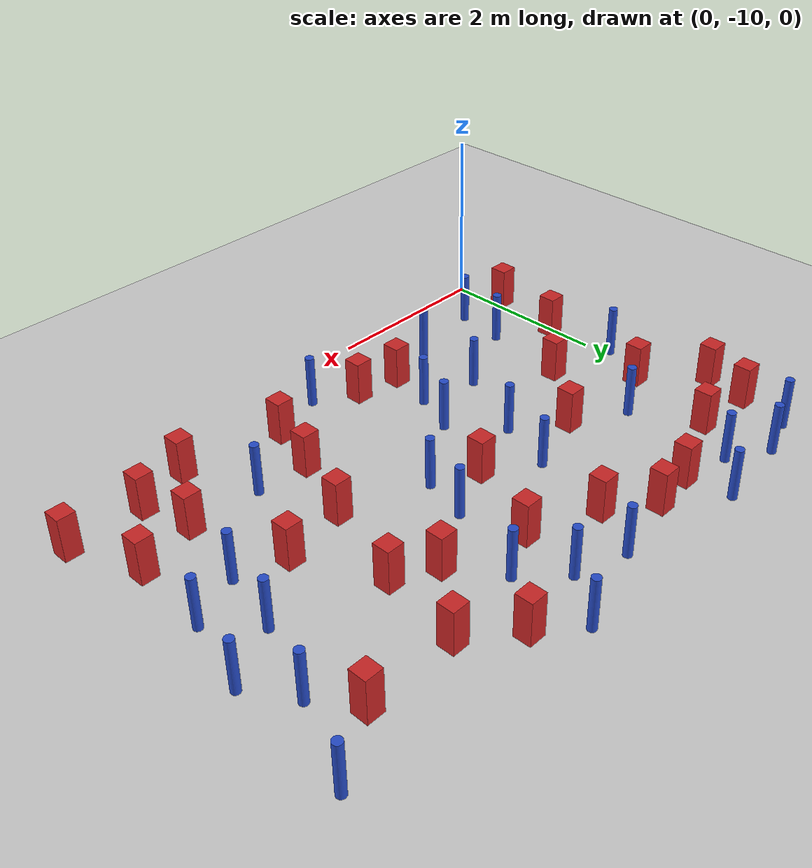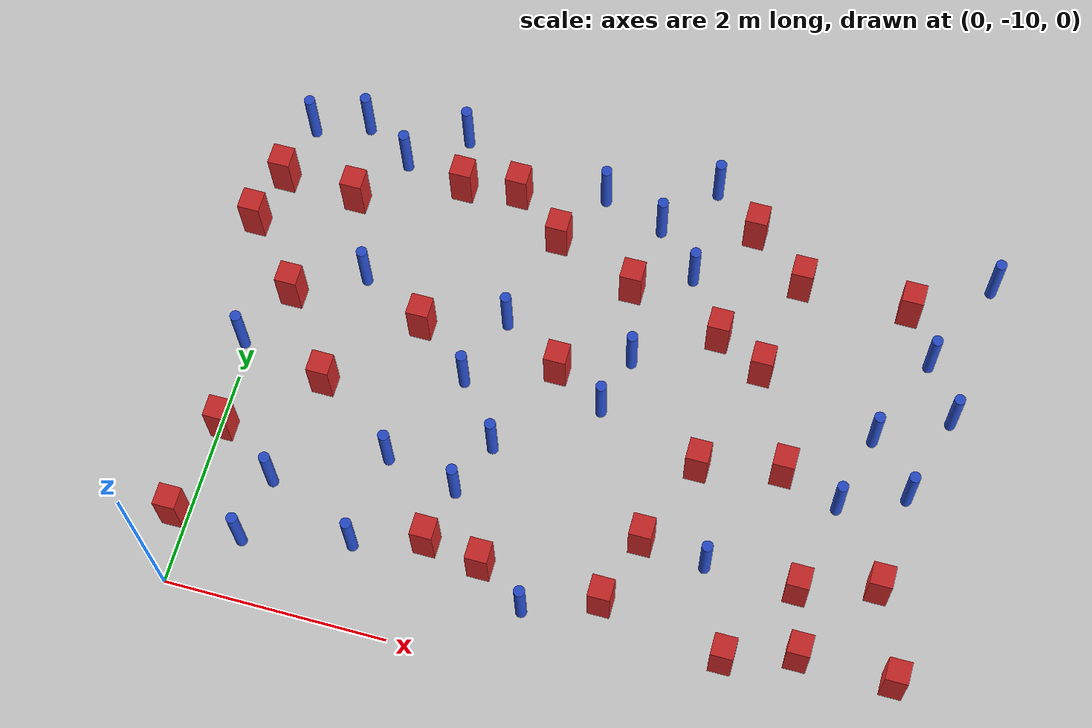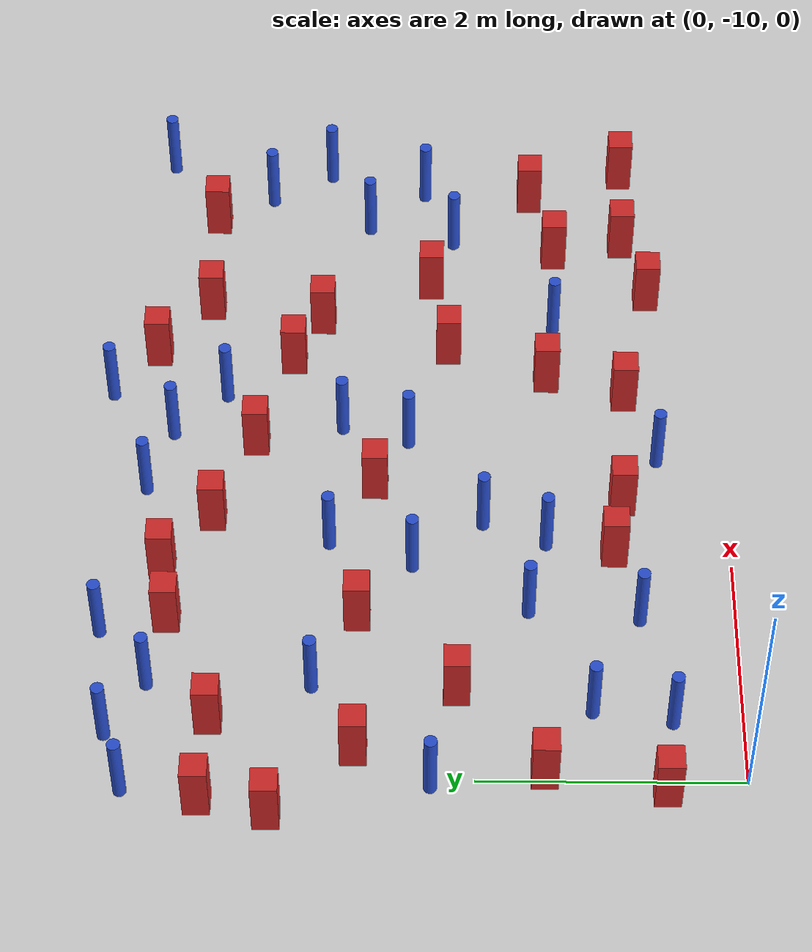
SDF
<sdf version="1.6">
 <world name="default">
  <model name="ground_plane">
   <static>1</static>
   <link name="link">
    <collision name="collision">
     <geometry><plane><normal>0 0 1</normal><size>100 100</size></plane></geometry>
     <surface><friction><ode><mu>100</mu><mu2>50</mu2></ode></friction></surface>
    </collision>
    <visual name="visual">
     <cast_shadows>0</cast_shadows>
     <geometry><plane><normal>0 0 1</normal><size>100 100</size></plane></geometry>
     <material>
      <ambient>1.0 1.0 1.0 1.0</ambient>
      <diffuse>0.8 0.8 0.8 1.0</diffuse>
      <specular>0.01 0.01 0.01 1.000000</specular>
     </material>
    </visual>
   </link>
  </model>
  <model name="square_post_obstacle6">
   <static>true</static>
   <pose>4.19397803059 -7.79593821687 1.91545236811e-07 -7.35059704564e-06 1.12565212e-07 2.39332434364e-05</pose>
   <link name="link">
    <pose>0 0 0.25 0 -0 0</pose>
    <inertial>
     <mass>100</mass>
     <inertia>
      <ixx>0.166667</ixx>
      <ixy>0</ixy>
      <ixz>0</ixz>
      <iyy>0.166667</iyy>
      <iyz>0</iyz>
      <izz>0.166667</izz>
     </inertia>
    </inertial>
    <collision name="collision"><geometry><box><size>.2 .2 .5</size></box></geometry></collision>
    <visual name="visual">
     <geometry><box><size>.2 .2 .5</size></box></geometry>
     <material>
      <script><name>Gazebo/Red</name><uri>file://media/materials/scripts/gazebo.material</uri></script>
     </material>
    </visual>
   </link>
  </model>
  <model name="square_post_obstacle8">
   <static>true</static>
   <pose>6.26625109611 -9.26206873367 1.91545236811e-07 -7.35059704564e-06 1.12565212e-07 2.39332434364e-05</pose>
   <link name="link">
    <pose>0 0 0.25 0 -0 0</pose>
    <inertial>
     <mass>100</mass>
     <inertia>
      <ixx>0.166667</ixx>
      <ixy>0</ixy>
      <ixz>0</ixz>
      <iyy>0.166667</iyy>
      <iyz>0</iyz>
      <izz>0.166667</izz>
     </inertia>
    </inertial>
    <collision name="collision"><geometry><box><size>.2 .2 .5</size></box></geometry></collision>
    <visual name="visual">
     <geometry><box><size>.2 .2 .5</size></box></geometry>
     <material>
      <script><name>Gazebo/Red</name><uri>file://media/materials/scripts/gazebo.material</uri></script>
     </material>
    </visual>
   </link>
  </model>
  <model name="square_post_obstacle13">
   <static>true</static>
   <pose>0.772211470827 -7.86731333248 1.91545236811e-07 -7.35059704564e-06 1.12565212e-07 2.39332434364e-05</pose>
   <link name="link">
    <pose>0 0 0.25 0 -0 0</pose>
    <inertial>
     <mass>100</mass>
     <inertia>
      <ixx>0.166667</ixx>
      <ixy>0</ixy>
      <ixz>0</ixz>
      <iyy>0.166667</iyy>
      <iyz>0</iyz>
      <izz>0.166667</izz>
     </inertia>
    </inertial>
    <collision name="collision"><geometry><box><size>.2 .2 .5</size></box></geometry></collision>
    <visual name="visual">
     <geometry><box><size>.2 .2 .5</size></box></geometry>
     <material>
      <script><name>Gazebo/Red</name><uri>file://media/materials/scripts/gazebo.material</uri></script>
     </material>
    </visual>
   </link>
  </model>
  <model name="pole_obstacle10">
   <static>true</static>
   <pose>2.19114133356 -6.87599460677 7.38925637345e-09 -8.47170692798e-08 1.24976765033e-08 -1.74513093019e-07</pose>
   <link name="link">
    <pose>0 0 0.3 0 -0 0</pose>
    <inertial>
     <mass>1</mass>
     <inertia><ixx>0.145833</ixx><ixy>0</ixy><ixz>0</ixz><iyy>0.145833</iyy><iyz>0</iyz><izz>0.125</izz></inertia>
    </inertial>
    <collision name="collision">
     <geometry><cylinder><radius>0.05</radius><length>.6</length></cylinder></geometry>
    </collision>
    <visual name="visual">
     <geometry><cylinder><radius>0.05</radius><length>.6</length></cylinder></geometry>
     <material>
      <script><name>Gazebo/Blue</name><uri>file://media/materials/scripts/gazebo.material</uri></script>
     </material>
    </visual>
   </link>
  </model>
  <model name="square_post_obstacle22">
   <static>true</static>
   <pose>4.52502306047 -6.75875061664 1.91545236811e-07 -7.35059704564e-06 1.12565212e-07 2.39332434364e-05</pose>
   <link name="link">
    <pose>0 0 0.25 0 -0 0</pose>
    <inertial>
     <mass>100</mass>
     <inertia>
      <ixx>0.166667</ixx>
      <ixy>0</ixy>
      <ixz>0</ixz>
      <iyy>0.166667</iyy>
      <iyz>0</iyz>
      <izz>0.166667</izz>
     </inertia>
    </inertial>
    <collision name="collision"><geometry><box><size>.2 .2 .5</size></box></geometry></collision>
    <visual name="visual">
     <geometry><box><size>.2 .2 .5</size></box></geometry>
     <material>
      <script><name>Gazebo/Red</name><uri>file://media/materials/scripts/gazebo.material</uri></script>
     </material>
    </visual>
   </link>
  </model>
  <model name="square_post_obstacle23">
   <static>true</static>
   <pose>4.93214074501 -7.65087776657 1.91545236811e-07 -7.35059704564e-06 1.12565212e-07 2.39332434364e-05</pose>
   <link name="link">
    <pose>0 0 0.25 0 -0 0</pose>
    <inertial>
     <mass>100</mass>
     <inertia>
      <ixx>0.166667</ixx>
      <ixy>0</ixy>
      <ixz>0</ixz>
      <iyy>0.166667</iyy>
      <iyz>0</iyz>
      <izz>0.166667</izz>
     </inertia>
    </inertial>
    <collision name="collision"><geometry><box><size>.2 .2 .5</size></box></geometry></collision>
    <visual name="visual">
     <geometry><box><size>.2 .2 .5</size></box></geometry>
     <material>
      <script><name>Gazebo/Red</name><uri>file://media/materials/scripts/gazebo.material</uri></script>
     </material>
    </visual>
   </link>
  </model>
  <model name="pole_obstacle20">
   <static>true</static>
   <pose>1.53778844039 -8.41500415461 7.38925637345e-09 -8.47170692798e-08 1.24976764881e-08 -1.74513093027e-07</pose>
   <link name="link">
    <pose>0 0 0.3 0 -0 0</pose>
    <inertial>
     <mass>1</mass>
     <inertia><ixx>0.145833</ixx><ixy>0</ixy><ixz>0</ixz><iyy>0.145833</iyy><iyz>0</iyz><izz>0.125</izz></inertia>
    </inertial>
    <collision name="collision">
     <geometry><cylinder><radius>0.05</radius><length>.6</length></cylinder></geometry>
    </collision>
    <visual name="visual">
     <geometry><cylinder><radius>0.05</radius><length>.6</length></cylinder></geometry>
     <material>
      <script><name>Gazebo/Blue</name><uri>file://media/materials/scripts/gazebo.material</uri></script>
     </material>
    </visual>
   </link>
  </model>
  <model name="square_post_obstacle31">
   <static>true</static>
   <pose>0.0392844817301 -8.51074845727 1.91545236811e-07 -7.35059704564e-06 1.12565212e-07 2.39332434364e-05</pose>
   <link name="link">
    <pose>0 0 0.25 0 -0 0</pose>
    <inertial>
     <mass>100</mass>
     <inertia>
      <ixx>0.166667</ixx>
      <ixy>0</ixy>
      <ixz>0</ixz>
      <iyy>0.166667</iyy>
      <iyz>0</iyz>
      <izz>0.166667</izz>
     </inertia>
    </inertial>
    <collision name="collision"><geometry><box><size>.2 .2 .5</size></box></geometry></collision>
    <visual name="visual">
     <geometry><box><size>.2 .2 .5</size></box></geometry>
     <material>
      <script><name>Gazebo/Red</name><uri>file://media/materials/scripts/gazebo.material</uri></script>
     </material>
    </visual>
   </link>
  </model>
  <model name="pole_obstacle30">
   <static>true</static>
   <pose>2.39608411069 -8.07155105306 7.38925637345e-09 -8.47170692793e-08 1.24976764408e-08 -1.74513093041e-07</pose>
   <link name="link">
    <pose>0 0 0.3 0 -0 0</pose>
    <inertial>
     <mass>1</mass>
     <inertia><ixx>0.145833</ixx><ixy>0</ixy><ixz>0</ixz><iyy>0.145833</iyy><iyz>0</iyz><izz>0.125</izz></inertia>
    </inertial>
    <collision name="collision">
     <geometry><cylinder><radius>0.05</radius><length>.6</length></cylinder></geometry>
    </collision>
    <visual name="visual">
     <geometry><cylinder><radius>0.05</radius><length>.6</length></cylinder></geometry>
     <material>
      <script><name>Gazebo/Blue</name><uri>file://media/materials/scripts/gazebo.material</uri></script>
     </material>
    </visual>
   </link>
  </model>
  <model name="pole_obstacle32">
   <static>true</static>
   <pose>0.377875264153 -5.26143734347 7.38925637345e-09 -8.471706928e-08 1.24976765079e-08 -1.74513093015e-07</pose>
   <link name="link">
    <pose>0 0 0.3 0 -0 0</pose>
    <inertial>
     <mass>1</mass>
     <inertia><ixx>0.145833</ixx><ixy>0</ixy><ixz>0</ixz><iyy>0.145833</iyy><iyz>0</iyz><izz>0.125</izz></inertia>
    </inertial>
    <collision name="collision">
     <geometry><cylinder><radius>0.05</radius><length>.6</length></cylinder></geometry>
    </collision>
    <visual name="visual">
     <geometry><cylinder><radius>0.05</radius><length>.6</length></cylinder></geometry>
     <material>
      <script><name>Gazebo/Blue</name><uri>file://media/materials/scripts/gazebo.material</uri></script>
     </material>
    </visual>
   </link>
  </model>
  <model name="square_post_obstacle39">
   <static>true</static>
   <pose>1.42407613757 -5.65930812135 1.91545236811e-07 -7.35059704564e-06 1.12565212e-07 2.39332434364e-05</pose>
   <link name="link">
    <pose>0 0 0.25 0 -0 0</pose>
    <inertial>
     <mass>100</mass>
     <inertia>
      <ixx>0.166667</ixx>
      <ixy>0</ixy>
      <ixz>0</ixz>
      <iyy>0.166667</iyy>
      <iyz>0</iyz>
      <izz>0.166667</izz>
     </inertia>
    </inertial>
    <collision name="collision"><geometry><box><size>.2 .2 .5</size></box></geometry></collision>
    <visual name="visual">
     <geometry><box><size>.2 .2 .5</size></box></geometry>
     <material>
      <script><name>Gazebo/Red</name><uri>file://media/materials/scripts/gazebo.material</uri></script>
     </material>
    </visual>
   </link>
  </model>
  <model name="square_post_obstacle45">
   <static>true</static>
   <pose>2.75779649857 -7.22167584085 1.91545236811e-07 -7.35059704564e-06 1.12565212e-07 2.39332434364e-05</pose>
   <link name="link">
    <pose>0 0 0.25 0 -0 0</pose>
    <inertial>
     <mass>100</mass>
     <inertia>
      <ixx>0.166667</ixx>
      <ixy>0</ixy>
      <ixz>0</ixz>
      <iyy>0.166667</iyy>
      <iyz>0</iyz>
      <izz>0.166667</izz>
     </inertia>
    </inertial>
    <collision name="collision"><geometry><box><size>.2 .2 .5</size></box></geometry></collision>
    <visual name="visual">
     <geometry><box><size>.2 .2 .5</size></box></geometry>
     <material>
      <script><name>Gazebo/Red</name><uri>file://media/materials/scripts/gazebo.material</uri></script>
     </material>
    </visual>
   </link>
  </model>
  <model name="square_post_obstacle46">
   <static>true</static>
   <pose>-0.10520626963 -9.39823450729 1.91545236811e-07 -7.35059704564e-06 1.12565212e-07 2.39332434364e-05</pose>
   <link name="link">
    <pose>0 0 0.25 0 -0 0</pose>
    <inertial>
     <mass>100</mass>
     <inertia>
      <ixx>0.166667</ixx>
      <ixy>0</ixy>
      <ixz>0</ixz>
      <iyy>0.166667</iyy>
      <iyz>0</iyz>
      <izz>0.166667</izz>
     </inertia>
    </inertial>
    <collision name="collision"><geometry><box><size>.2 .2 .5</size></box></geometry></collision>
    <visual name="visual">
     <geometry><box><size>.2 .2 .5</size></box></geometry>
     <material>
      <script><name>Gazebo/Red</name><uri>file://media/materials/scripts/gazebo.material</uri></script>
     </material>
    </visual>
   </link>
  </model>
  <model name="square_post_obstacle48">
   <static>true</static>
   <pose>0.227653712787 -7.10865654268 1.91545236811e-07 -7.35059704564e-06 1.12565212e-07 2.39332434364e-05</pose>
   <link name="link">
    <pose>0 0 0.25 0 -0 0</pose>
    <inertial>
     <mass>100</mass>
     <inertia>
      <ixx>0.166667</ixx>
      <ixy>0</ixy>
      <ixz>0</ixz>
      <iyy>0.166667</iyy>
      <iyz>0</iyz>
      <izz>0.166667</izz>
     </inertia>
    </inertial>
    <collision name="collision"><geometry><box><size>.2 .2 .5</size></box></geometry></collision>
    <visual name="visual">
     <geometry><box><size>.2 .2 .5</size></box></geometry>
     <material>
      <script><name>Gazebo/Red</name><uri>file://media/materials/scripts/gazebo.material</uri></script>
     </material>
    </visual>
   </link>
  </model>
  <model name="pole_obstacle50">
   <static>true</static>
   <pose>5.63303820513 -7.12730682719 7.38925637345e-09 -8.47170692796e-08 1.24976764786e-08 -1.74513093032e-07</pose>
   <link name="link">
    <pose>0 0 0.3 0 -0 0</pose>
    <inertial>
     <mass>1</mass>
     <inertia><ixx>0.145833</ixx><ixy>0</ixy><ixz>0</ixz><iyy>0.145833</iyy><iyz>0</iyz><izz>0.125</izz></inertia>
    </inertial>
    <collision name="collision">
     <geometry><cylinder><radius>0.05</radius><length>.6</length></cylinder></geometry>
    </collision>
    <visual name="visual">
     <geometry><cylinder><radius>0.05</radius><length>.6</length></cylinder></geometry>
     <material>
      <script><name>Gazebo/Blue</name><uri>file://media/materials/scripts/gazebo.material</uri></script>
     </material>
    </visual>
   </link>
  </model>
  <model name="square_post_obstacle53">
   <static>true</static>
   <pose>-0.33024483394 -6.49326579349 1.91545236811e-07 -7.35059704564e-06 1.12565212e-07 2.39332434364e-05</pose>
   <link name="link">
    <pose>0 0 0.25 0 -0 0</pose>
    <inertial>
     <mass>100</mass>
     <inertia>
      <ixx>0.166667</ixx>
      <ixy>0</ixy>
      <ixz>0</ixz>
      <iyy>0.166667</iyy>
      <iyz>0</iyz>
      <izz>0.166667</izz>
     </inertia>
    </inertial>
    <collision name="collision"><geometry><box><size>.2 .2 .5</size></box></geometry></collision>
    <visual name="visual">
     <geometry><box><size>.2 .2 .5</size></box></geometry>
     <material>
      <script><name>Gazebo/Red</name><uri>file://media/materials/scripts/gazebo.material</uri></script>
     </material>
    </visual>
   </link>
  </model>
  <model name="square_post_obstacle58">
   <static>true</static>
   <pose>4.81874318218 -9.43752990356 1.91545236811e-07 -7.35059704564e-06 1.12565212e-07 2.39332434364e-05</pose>
   <link name="link">
    <pose>0 0 0.25 0 -0 0</pose>
    <inertial>
     <mass>100</mass>
     <inertia>
      <ixx>0.166667</ixx>
      <ixy>0</ixy>
      <ixz>0</ixz>
      <iyy>0.166667</iyy>
      <iyz>0</iyz>
      <izz>0.166667</izz>
     </inertia>
    </inertial>
    <collision name="collision"><geometry><box><size>.2 .2 .5</size></box></geometry></collision>
    <visual name="visual">
     <geometry><box><size>.2 .2 .5</size></box></geometry>
     <material>
      <script><name>Gazebo/Red</name><uri>file://media/materials/scripts/gazebo.material</uri></script>
     </material>
    </visual>
   </link>
  </model>
  <model name="square_post_obstacle59">
   <static>true</static>
   <pose>3.19889941154 -6.26488978832 1.91545236811e-07 -7.35059704564e-06 1.12565212e-07 2.39332434364e-05</pose>
   <link name="link">
    <pose>0 0 0.25 0 -0 0</pose>
    <inertial>
     <mass>100</mass>
     <inertia>
      <ixx>0.166667</ixx>
      <ixy>0</ixy>
      <ixz>0</ixz>
      <iyy>0.166667</iyy>
      <iyz>0</iyz>
      <izz>0.166667</izz>
     </inertia>
    </inertial>
    <collision name="collision"><geometry><box><size>.2 .2 .5</size></box></geometry></collision>
    <visual name="visual">
     <geometry><box><size>.2 .2 .5</size></box></geometry>
     <material>
      <script><name>Gazebo/Red</name><uri>file://media/materials/scripts/gazebo.material</uri></script>
     </material>
    </visual>
   </link>
  </model>
  <model name="pole_obstacle57">
   <static>true</static>
   <pose>1.46952720271 -9.26334321684 7.38925637345e-09 -8.47170692798e-08 1.24976764881e-08 -1.74513093027e-07</pose>
   <link name="link">
    <pose>0 0 0.3 0 -0 0</pose>
    <inertial>
     <mass>1</mass>
     <inertia><ixx>0.145833</ixx><ixy>0</ixy><ixz>0</ixz><iyy>0.145833</iyy><iyz>0</iyz><izz>0.125</izz></inertia>
    </inertial>
    <collision name="collision">
     <geometry><cylinder><radius>0.05</radius><length>.6</length></cylinder></geometry>
    </collision>
    <visual name="visual">
     <geometry><cylinder><radius>0.05</radius><length>.6</length></cylinder></geometry>
     <material>
      <script><name>Gazebo/Blue</name><uri>file://media/materials/scripts/gazebo.material</uri></script>
     </material>
    </visual>
   </link>
  </model>
  <model name="pole_obstacle62">
   <static>true</static>
   <pose>5.4635110812 -7.83443111001 7.38925637345e-09 -8.47170692796e-08 1.24976764786e-08 -1.74513093032e-07</pose>
   <link name="link">
    <pose>0 0 0.3 0 -0 0</pose>
    <inertial>
     <mass>1</mass>
     <inertia><ixx>0.145833</ixx><ixy>0</ixy><ixz>0</ixz><iyy>0.145833</iyy><iyz>0</iyz><izz>0.125</izz></inertia>
    </inertial>
    <collision name="collision">
     <geometry><cylinder><radius>0.05</radius><length>.6</length></cylinder></geometry>
    </collision>
    <visual name="visual">
     <geometry><cylinder><radius>0.05</radius><length>.6</length></cylinder></geometry>
     <material>
      <script><name>Gazebo/Blue</name><uri>file://media/materials/scripts/gazebo.material</uri></script>
     </material>
    </visual>
   </link>
  </model>
  <model name="square_post_obstacle64">
   <static>true</static>
   <pose>-0.21153214395 -5.98622909154 1.91545236811e-07 -7.35059704564e-06 1.12565212e-07 2.39332434364e-05</pose>
   <link name="link">
    <pose>0 0 0.25 0 -0 0</pose>
    <inertial>
     <mass>100</mass>
     <inertia>
      <ixx>0.166667</ixx>
      <ixy>0</ixy>
      <ixz>0</ixz>
      <iyy>0.166667</iyy>
      <iyz>0</iyz>
      <izz>0.166667</izz>
     </inertia>
    </inertial>
    <collision name="collision"><geometry><box><size>.2 .2 .5</size></box></geometry></collision>
    <visual name="visual">
     <geometry><box><size>.2 .2 .5</size></box></geometry>
     <material>
      <script><name>Gazebo/Red</name><uri>file://media/materials/scripts/gazebo.material</uri></script>
     </material>
    </visual>
   </link>
  </model>
  <model name="square_post_obstacle74">
   <static>true</static>
   <pose>4.67828101593 -5.83509719661 1.91545236811e-07 -7.35059704564e-06 1.12565212e-07 2.39332434364e-05</pose>
   <link name="link">
    <pose>0 0 0.25 0 -0 0</pose>
    <inertial>
     <mass>100</mass>
     <inertia>
      <ixx>0.166667</ixx>
      <ixy>0</ixy>
      <ixz>0</ixz>
      <iyy>0.166667</iyy>
      <iyz>0</iyz>
      <izz>0.166667</izz>
     </inertia>
    </inertial>
    <collision name="collision"><geometry><box><size>.2 .2 .5</size></box></geometry></collision>
    <visual name="visual">
     <geometry><box><size>.2 .2 .5</size></box></geometry>
     <material>
      <script><name>Gazebo/Red</name><uri>file://media/materials/scripts/gazebo.material</uri></script>
     </material>
    </visual>
   </link>
  </model>
  <model name="pole_obstacle79">
   <static>true</static>
   <pose>1.97202425343 -7.52304037253 7.38925637345e-09 -8.471706928e-08 1.24976765202e-08 -1.7451309301e-07</pose>
   <link name="link">
    <pose>0 0 0.3 0 -0 0</pose>
    <inertial>
     <mass>1</mass>
     <inertia><ixx>0.145833</ixx><ixy>0</ixy><ixz>0</ixz><iyy>0.145833</iyy><iyz>0</iyz><izz>0.125</izz></inertia>
    </inertial>
    <collision name="collision">
     <geometry><cylinder><radius>0.05</radius><length>.6</length></cylinder></geometry>
    </collision>
    <visual name="visual">
     <geometry><cylinder><radius>0.05</radius><length>.6</length></cylinder></geometry>
     <material>
      <script><name>Gazebo/Blue</name><uri>file://media/materials/scripts/gazebo.material</uri></script>
     </material>
    </visual>
   </link>
  </model>
  <model name="square_post_obstacle79">
   <static>true</static>
   <pose>1.9387877965 -5.59144368387 1.91545236811e-07 -7.35059704564e-06 1.12565212e-07 2.39332434364e-05</pose>
   <link name="link">
    <pose>0 0 0.25 0 -0 0</pose>
    <inertial>
     <mass>100</mass>
     <inertia>
      <ixx>0.166667</ixx>
      <ixy>0</ixy>
      <ixz>0</ixz>
      <iyy>0.166667</iyy>
      <iyz>0</iyz>
      <izz>0.166667</izz>
     </inertia>
    </inertial>
    <collision name="collision"><geometry><box><size>.2 .2 .5</size></box></geometry></collision>
    <visual name="visual">
     <geometry><box><size>.2 .2 .5</size></box></geometry>
     <material>
      <script><name>Gazebo/Red</name><uri>file://media/materials/scripts/gazebo.material</uri></script>
     </material>
    </visual>
   </link>
  </model>
  <model name="pole_obstacle88">
   <static>true</static>
   <pose>2.72678203887 -5.41484933775 7.38925637345e-09 -8.47170692798e-08 1.24976765033e-08 -1.74513093019e-07</pose>
   <link name="link">
    <pose>0 0 0.3 0 -0 0</pose>
    <inertial>
     <mass>1</mass>
     <inertia><ixx>0.145833</ixx><ixy>0</ixy><ixz>0</ixz><iyy>0.145833</iyy><iyz>0</iyz><izz>0.125</izz></inertia>
    </inertial>
    <collision name="collision">
     <geometry><cylinder><radius>0.05</radius><length>.6</length></cylinder></geometry>
    </collision>
    <visual name="visual">
     <geometry><cylinder><radius>0.05</radius><length>.6</length></cylinder></geometry>
     <material>
      <script><name>Gazebo/Blue</name><uri>file://media/materials/scripts/gazebo.material</uri></script>
     </material>
    </visual>
   </link>
  </model>
  <model name="pole_obstacle93">
   <static>true</static>
   <pose>0.612565031665 -8.87817404271 7.38925637345e-09 -8.47170692797e-08 1.249767648e-08 -1.74513093032e-07</pose>
   <link name="link">
    <pose>0 0 0.3 0 -0 0</pose>
    <inertial>
     <mass>1</mass>
     <inertia><ixx>0.145833</ixx><ixy>0</ixy><ixz>0</ixz><iyy>0.145833</iyy><iyz>0</iyz><izz>0.125</izz></inertia>
    </inertial>
    <collision name="collision">
     <geometry><cylinder><radius>0.05</radius><length>.6</length></cylinder></geometry>
    </collision>
    <visual name="visual">
     <geometry><cylinder><radius>0.05</radius><length>.6</length></cylinder></geometry>
     <material>
      <script><name>Gazebo/Blue</name><uri>file://media/materials/scripts/gazebo.material</uri></script>
     </material>
    </visual>
   </link>
  </model>
  <model name="square_post_obstacle86">
   <static>true</static>
   <pose>5.68639350906 -5.83211808647 1.91545236811e-07 -7.35059704564e-06 1.12565212e-07 2.39332434364e-05</pose>
   <link name="link">
    <pose>0 0 0.25 0 -0 0</pose>
    <inertial>
     <mass>100</mass>
     <inertia>
      <ixx>0.166667</ixx>
      <ixy>0</ixy>
      <ixz>0</ixz>
      <iyy>0.166667</iyy>
      <iyz>0</iyz>
      <izz>0.166667</izz>
     </inertia>
    </inertial>
    <collision name="collision"><geometry><box><size>.2 .2 .5</size></box></geometry></collision>
    <visual name="visual">
     <geometry><box><size>.2 .2 .5</size></box></geometry>
     <material>
      <script><name>Gazebo/Red</name><uri>file://media/materials/scripts/gazebo.material</uri></script>
     </material>
    </visual>
   </link>
  </model>
  <model name="pole_obstacle103">
   <static>true</static>
   <pose>6.0398007227 -7.59028607454 7.38925637345e-09 -8.47170692796e-08 1.24976764786e-08 -1.74513093032e-07</pose>
   <link name="link">
    <pose>0 0 0.3 0 -0 0</pose>
    <inertial>
     <mass>1</mass>
     <inertia><ixx>0.145833</ixx><ixy>0</ixy><ixz>0</ixz><iyy>0.145833</iyy><iyz>0</iyz><izz>0.125</izz></inertia>
    </inertial>
    <collision name="collision">
     <geometry><cylinder><radius>0.05</radius><length>.6</length></cylinder></geometry>
    </collision>
    <visual name="visual">
     <geometry><cylinder><radius>0.05</radius><length>.6</length></cylinder></geometry>
     <material>
      <script><name>Gazebo/Blue</name><uri>file://media/materials/scripts/gazebo.material</uri></script>
     </material>
    </visual>
   </link>
  </model>
  <model name="pole_obstacle106">
   <static>true</static>
   <pose>3.231013918 -7.47876884364 7.38925637345e-09 -8.47170692798e-08 1.24976765033e-08 -1.74513093019e-07</pose>
   <link name="link">
    <pose>0 0 0.3 0 -0 0</pose>
    <inertial>
     <mass>1</mass>
     <inertia><ixx>0.145833</ixx><ixy>0</ixy><ixz>0</ixz><iyy>0.145833</iyy><iyz>0</iyz><izz>0.125</izz></inertia>
    </inertial>
    <collision name="collision">
     <geometry><cylinder><radius>0.05</radius><length>.6</length></cylinder></geometry>
    </collision>
    <visual name="visual">
     <geometry><cylinder><radius>0.05</radius><length>.6</length></cylinder></geometry>
     <material>
      <script><name>Gazebo/Blue</name><uri>file://media/materials/scripts/gazebo.material</uri></script>
     </material>
    </visual>
   </link>
  </model>
  <model name="square_post_obstacle105">
   <static>true</static>
   <pose>2.60833822757 -9.16600396907 1.91545236811e-07 -7.35059704564e-06 1.12565212e-07 2.39332434364e-05</pose>
   <link name="link">
    <pose>0 0 0.25 0 -0 0</pose>
    <inertial>
     <mass>100</mass>
     <inertia>
      <ixx>0.166667</ixx>
      <ixy>0</ixy>
      <ixz>0</ixz>
      <iyy>0.166667</iyy>
      <iyz>0</iyz>
      <izz>0.166667</izz>
     </inertia>
    </inertial>
    <collision name="collision"><geometry><box><size>.2 .2 .5</size></box></geometry></collision>
    <visual name="visual">
     <geometry><box><size>.2 .2 .5</size></box></geometry>
     <material>
      <script><name>Gazebo/Red</name><uri>file://media/materials/scripts/gazebo.material</uri></script>
     </material>
    </visual>
   </link>
  </model>
  <model name="square_post_obstacle109">
   <static>true</static>
   <pose>5.42975025469 -9.2468681573 1.91545236811e-07 -7.35059704564e-06 1.12565212e-07 2.39332434364e-05</pose>
   <link name="link">
    <pose>0 0 0.25 0 -0 0</pose>
    <inertial>
     <mass>100</mass>
     <inertia>
      <ixx>0.166667</ixx>
      <ixy>0</ixy>
      <ixz>0</ixz>
      <iyy>0.166667</iyy>
      <iyz>0</iyz>
      <izz>0.166667</izz>
     </inertia>
    </inertial>
    <collision name="collision"><geometry><box><size>.2 .2 .5</size></box></geometry></collision>
    <visual name="visual">
     <geometry><box><size>.2 .2 .5</size></box></geometry>
     <material>
      <script><name>Gazebo/Red</name><uri>file://media/materials/scripts/gazebo.material</uri></script>
     </material>
    </visual>
   </link>
  </model>
  <model name="pole_obstacle125">
   <static>true</static>
   <pose>3.71751121343 -5.07867403316 7.38925637345e-09 -8.47170692798e-08 1.24976765033e-08 -1.74513093019e-07</pose>
   <link name="link">
    <pose>0 0 0.3 0 -0 0</pose>
    <inertial>
     <mass>1</mass>
     <inertia><ixx>0.145833</ixx><ixy>0</ixy><ixz>0</ixz><iyy>0.145833</iyy><iyz>0</iyz><izz>0.125</izz></inertia>
    </inertial>
    <collision name="collision">
     <geometry><cylinder><radius>0.05</radius><length>.6</length></cylinder></geometry>
    </collision>
    <visual name="visual">
     <geometry><cylinder><radius>0.05</radius><length>.6</length></cylinder></geometry>
     <material>
      <script><name>Gazebo/Blue</name><uri>file://media/materials/scripts/gazebo.material</uri></script>
     </material>
    </visual>
   </link>
  </model>
  <model name="pole_obstacle135">
   <static>true</static>
   <pose>0.834663401277 -5.54327725351 7.38925637345e-09 -8.471706928e-08 1.24976765086e-08 -1.74513093015e-07</pose>
   <link name="link">
    <pose>0 0 0.3 0 -0 0</pose>
    <inertial>
     <mass>1</mass>
     <inertia><ixx>0.145833</ixx><ixy>0</ixy><ixz>0</ixz><iyy>0.145833</iyy><iyz>0</iyz><izz>0.125</izz></inertia>
    </inertial>
    <collision name="collision">
     <geometry><cylinder><radius>0.05</radius><length>.6</length></cylinder></geometry>
    </collision>
    <visual name="visual">
     <geometry><cylinder><radius>0.05</radius><length>.6</length></cylinder></geometry>
     <material>
      <script><name>Gazebo/Blue</name><uri>file://media/materials/scripts/gazebo.material</uri></script>
     </material>
    </visual>
   </link>
  </model>
  <model name="pole_obstacle138">
   <static>true</static>
   <pose>1.3204764956 -5.15401270149 7.38925637345e-09 -8.47170692799e-08 1.24976765033e-08 -1.74513093018e-07</pose>
   <link name="link">
    <pose>0 0 0.3 0 -0 0</pose>
    <inertial>
     <mass>1</mass>
     <inertia><ixx>0.145833</ixx><ixy>0</ixy><ixz>0</ixz><iyy>0.145833</iyy><iyz>0</iyz><izz>0.125</izz></inertia>
    </inertial>
    <collision name="collision">
     <geometry><cylinder><radius>0.05</radius><length>.6</length></cylinder></geometry>
    </collision>
    <visual name="visual">
     <geometry><cylinder><radius>0.05</radius><length>.6</length></cylinder></geometry>
     <material>
      <script><name>Gazebo/Blue</name><uri>file://media/materials/scripts/gazebo.material</uri></script>
     </material>
    </visual>
   </link>
  </model>
  <model name="square_post_obstacle121">
   <static>true</static>
   <pose>5.96718829959 -8.48121459847 1.91545236811e-07 -7.35059704564e-06 1.12565212e-07 2.39332434364e-05</pose>
   <link name="link">
    <pose>0 0 0.25 0 -0 0</pose>
    <inertial>
     <mass>100</mass>
     <inertia>
      <ixx>0.166667</ixx>
      <ixy>0</ixy>
      <ixz>0</ixz>
      <iyy>0.166667</iyy>
      <iyz>0</iyz>
      <izz>0.166667</izz>
     </inertia>
    </inertial>
    <collision name="collision"><geometry><box><size>.2 .2 .5</size></box></geometry></collision>
    <visual name="visual">
     <geometry><box><size>.2 .2 .5</size></box></geometry>
     <material>
      <script><name>Gazebo/Red</name><uri>file://media/materials/scripts/gazebo.material</uri></script>
     </material>
    </visual>
   </link>
  </model>
  <model name="square_post_obstacle124">
   <static>true</static>
   <pose>5.29317466504 -8.67597911265 1.91545236811e-07 -7.35059704564e-06 1.12565212e-07 2.39332434364e-05</pose>
   <link name="link">
    <pose>0 0 0.25 0 -0 0</pose>
    <inertial>
     <mass>100</mass>
     <inertia>
      <ixx>0.166667</ixx>
      <ixy>0</ixy>
      <ixz>0</ixz>
      <iyy>0.166667</iyy>
      <iyz>0</iyz>
      <izz>0.166667</izz>
     </inertia>
    </inertial>
    <collision name="collision"><geometry><box><size>.2 .2 .5</size></box></geometry></collision>
    <visual name="visual">
     <geometry><box><size>.2 .2 .5</size></box></geometry>
     <material>
      <script><name>Gazebo/Red</name><uri>file://media/materials/scripts/gazebo.material</uri></script>
     </material>
    </visual>
   </link>
  </model>
  <model name="square_post_obstacle127">
   <static>true</static>
   <pose>0.492449295776 -6.02844202041 1.91545236811e-07 -7.35059704564e-06 1.12565212e-07 2.39332434364e-05</pose>
   <link name="link">
    <pose>0 0 0.25 0 -0 0</pose>
    <inertial>
     <mass>100</mass>
     <inertia>
      <ixx>0.166667</ixx>
      <ixy>0</ixy>
      <ixz>0</ixz>
      <iyy>0.166667</iyy>
      <iyz>0</iyz>
      <izz>0.166667</izz>
     </inertia>
    </inertial>
    <collision name="collision"><geometry><box><size>.2 .2 .5</size></box></geometry></collision>
    <visual name="visual">
     <geometry><box><size>.2 .2 .5</size></box></geometry>
     <material>
      <script><name>Gazebo/Red</name><uri>file://media/materials/scripts/gazebo.material</uri></script>
     </material>
    </visual>
   </link>
  </model>
  <model name="square_post_obstacle138">
   <static>true</static>
   <pose>4.15504456436 -5.42534551516 1.91545236811e-07 -7.35059704564e-06 1.12565212e-07 2.39332434364e-05</pose>
   <link name="link">
    <pose>0 0 0.25 0 -0 0</pose>
    <inertial>
     <mass>100</mass>
     <inertia>
      <ixx>0.166667</ixx>
      <ixy>0</ixy>
      <ixz>0</ixz>
      <iyy>0.166667</iyy>
      <iyz>0</iyz>
      <izz>0.166667</izz>
     </inertia>
    </inertial>
    <collision name="collision"><geometry><box><size>.2 .2 .5</size></box></geometry></collision>
    <visual name="visual">
     <geometry><box><size>.2 .2 .5</size></box></geometry>
     <material>
      <script><name>Gazebo/Red</name><uri>file://media/materials/scripts/gazebo.material</uri></script>
     </material>
    </visual>
   </link>
  </model>
  <model name="square_post_obstacle151">
   <static>true</static>
   <pose>1.45722636195 -7.10904027202 1.91545236811e-07 -7.35059704564e-06 1.12565212e-07 2.39332434364e-05</pose>
   <link name="link">
    <pose>0 0 0.25 0 -0 0</pose>
    <inertial>
     <mass>100</mass>
     <inertia>
      <ixx>0.166667</ixx>
      <ixy>0</ixy>
      <ixz>0</ixz>
      <iyy>0.166667</iyy>
      <iyz>0</iyz>
      <izz>0.166667</izz>
     </inertia>
    </inertial>
    <collision name="collision"><geometry><box><size>.2 .2 .5</size></box></geometry></collision>
    <visual name="visual">
     <geometry><box><size>.2 .2 .5</size></box></geometry>
     <material>
      <script><name>Gazebo/Red</name><uri>file://media/materials/scripts/gazebo.material</uri></script>
     </material>
    </visual>
   </link>
  </model>
  <model name="pole_obstacle163">
   <static>true</static>
   <pose>4.47693285886 -8.65839218837 7.38925637345e-09 -8.471706928e-08 1.24976765081e-08 -1.74513093015e-07</pose>
   <link name="link">
    <pose>0 0 0.3 0 -0 0</pose>
    <inertial>
     <mass>1</mass>
     <inertia><ixx>0.145833</ixx><ixy>0</ixy><ixz>0</ixz><iyy>0.145833</iyy><iyz>0</iyz><izz>0.125</izz></inertia>
    </inertial>
    <collision name="collision">
     <geometry><cylinder><radius>0.05</radius><length>.6</length></cylinder></geometry>
    </collision>
    <visual name="visual">
     <geometry><cylinder><radius>0.05</radius><length>.6</length></cylinder></geometry>
     <material>
      <script><name>Gazebo/Blue</name><uri>file://media/materials/scripts/gazebo.material</uri></script>
     </material>
    </visual>
   </link>
  </model>
  <model name="pole_obstacle167">
   <static>true</static>
   <pose>3.37283130652 -6.95004390382 7.38925637345e-09 -8.47170692798e-08 1.24976765033e-08 -1.74513093019e-07</pose>
   <link name="link">
    <pose>0 0 0.3 0 -0 0</pose>
    <inertial>
     <mass>1</mass>
     <inertia><ixx>0.145833</ixx><ixy>0</ixy><ixz>0</ixz><iyy>0.145833</iyy><iyz>0</iyz><izz>0.125</izz></inertia>
    </inertial>
    <collision name="collision">
     <geometry><cylinder><radius>0.05</radius><length>.6</length></cylinder></geometry>
    </collision>
    <visual name="visual">
     <geometry><cylinder><radius>0.05</radius><length>.6</length></cylinder></geometry>
     <material>
      <script><name>Gazebo/Blue</name><uri>file://media/materials/scripts/gazebo.material</uri></script>
     </material>
    </visual>
   </link>
  </model>
  <model name="pole_obstacle173">
   <static>true</static>
   <pose>3.30367178407 -5.59507461937 7.38925637345e-09 -8.47170692798e-08 1.24976765033e-08 -1.74513093019e-07</pose>
   <link name="link">
    <pose>0 0 0.3 0 -0 0</pose>
    <inertial>
     <mass>1</mass>
     <inertia><ixx>0.145833</ixx><ixy>0</ixy><ixz>0</ixz><iyy>0.145833</iyy><iyz>0</iyz><izz>0.125</izz></inertia>
    </inertial>
    <collision name="collision">
     <geometry><cylinder><radius>0.05</radius><length>.6</length></cylinder></geometry>
    </collision>
    <visual name="visual">
     <geometry><cylinder><radius>0.05</radius><length>.6</length></cylinder></geometry>
     <material>
      <script><name>Gazebo/Blue</name><uri>file://media/materials/scripts/gazebo.material</uri></script>
     </material>
    </visual>
   </link>
  </model>
  <model name="pole_obstacle176">
   <static>true</static>
   <pose>3.05310372641 -9.45560191249 7.38925637345e-09 -8.47170692793e-08 1.24976764408e-08 -1.74513093041e-07</pose>
   <link name="link">
    <pose>0 0 0.3 0 -0 0</pose>
    <inertial>
     <mass>1</mass>
     <inertia><ixx>0.145833</ixx><ixy>0</ixy><ixz>0</ixz><iyy>0.145833</iyy><iyz>0</iyz><izz>0.125</izz></inertia>
    </inertial>
    <collision name="collision">
     <geometry><cylinder><radius>0.05</radius><length>.6</length></cylinder></geometry>
    </collision>
    <visual name="visual">
     <geometry><cylinder><radius>0.05</radius><length>.6</length></cylinder></geometry>
     <material>
      <script><name>Gazebo/Blue</name><uri>file://media/materials/scripts/gazebo.material</uri></script>
     </material>
    </visual>
   </link>
  </model>
  <model name="pole_obstacle177">
   <static>true</static>
   <pose>-0.0598452252925 -7.67581059101 7.38925637345e-09 -8.47170692799e-08 1.24976765086e-08 -1.74513093017e-07</pose>
   <link name="link">
    <pose>0 0 0.3 0 -0 0</pose>
    <inertial>
     <mass>1</mass>
     <inertia><ixx>0.145833</ixx><ixy>0</ixy><ixz>0</ixz><iyy>0.145833</iyy><iyz>0</iyz><izz>0.125</izz></inertia>
    </inertial>
    <collision name="collision">
     <geometry><cylinder><radius>0.05</radius><length>.6</length></cylinder></geometry>
    </collision>
    <visual name="visual">
     <geometry><cylinder><radius>0.05</radius><length>.6</length></cylinder></geometry>
     <material>
      <script><name>Gazebo/Blue</name><uri>file://media/materials/scripts/gazebo.material</uri></script>
     </material>
    </visual>
   </link>
  </model>
  <model name="pole_obstacle191">
   <static>true</static>
   <pose>6.3700127425 -5.4094583683 7.38925637345e-09 -8.47170692796e-08 1.24976764786e-08 -1.74513093032e-07</pose>
   <link name="link">
    <pose>0 0 0.3 0 -0 0</pose>
    <inertial>
     <mass>1</mass>
     <inertia><ixx>0.145833</ixx><ixy>0</ixy><ixz>0</ixz><iyy>0.145833</iyy><iyz>0</iyz><izz>0.125</izz></inertia>
    </inertial>
    <collision name="collision">
     <geometry><cylinder><radius>0.05</radius><length>.6</length></cylinder></geometry>
    </collision>
    <visual name="visual">
     <geometry><cylinder><radius>0.05</radius><length>.6</length></cylinder></geometry>
     <material>
      <script><name>Gazebo/Blue</name><uri>file://media/materials/scripts/gazebo.material</uri></script>
     </material>
    </visual>
   </link>
  </model>
  <model name="square_post_obstacle183">
   <static>true</static>
   <pose>2.42141602209 -5.95868348215 1.91545236811e-07 -7.35059704564e-06 1.12565212e-07 2.39332434364e-05</pose>
   <link name="link">
    <pose>0 0 0.25 0 -0 0</pose>
    <inertial>
     <mass>100</mass>
     <inertia>
      <ixx>0.166667</ixx>
      <ixy>0</ixy>
      <ixz>0</ixz>
      <iyy>0.166667</iyy>
      <iyz>0</iyz>
      <izz>0.166667</izz>
     </inertia>
    </inertial>
    <collision name="collision"><geometry><box><size>.2 .2 .5</size></box></geometry></collision>
    <visual name="visual">
     <geometry><box><size>.2 .2 .5</size></box></geometry>
     <material>
      <script><name>Gazebo/Red</name><uri>file://media/materials/scripts/gazebo.material</uri></script>
     </material>
    </visual>
   </link>
  </model>
  <model name="square_post_obstacle185">
   <static>true</static>
   <pose>3.89506652188 -8.59172528387 1.91545236811e-07 -7.35059704564e-06 1.12565212e-07 2.39332434364e-05</pose>
   <link name="link">
    <pose>0 0 0.25 0 -0 0</pose>
    <inertial>
     <mass>100</mass>
     <inertia>
      <ixx>0.166667</ixx>
      <ixy>0</ixy>
      <ixz>0</ixz>
      <iyy>0.166667</iyy>
      <iyz>0</iyz>
      <izz>0.166667</izz>
     </inertia>
    </inertial>
    <collision name="collision"><geometry><box><size>.2 .2 .5</size></box></geometry></collision>
    <visual name="visual">
     <geometry><box><size>.2 .2 .5</size></box></geometry>
     <material>
      <script><name>Gazebo/Red</name><uri>file://media/materials/scripts/gazebo.material</uri></script>
     </material>
    </visual>
   </link>
  </model>
  <model name="pole_obstacle192">
   <static>true</static>
   <pose>0.523139649274 -9.47201606044 7.38925637345e-09 -8.47170692797e-08 1.24976764765e-08 -1.74513093034e-07</pose>
   <link name="link">
    <pose>0 0 0.3 0 -0 0</pose>
    <inertial>
     <mass>1</mass>
     <inertia><ixx>0.145833</ixx><ixy>0</ixy><ixz>0</ixz><iyy>0.145833</iyy><iyz>0</iyz><izz>0.125</izz></inertia>
    </inertial>
    <collision name="collision">
     <geometry><cylinder><radius>0.05</radius><length>.6</length></cylinder></geometry>
    </collision>
    <visual name="visual">
     <geometry><cylinder><radius>0.05</radius><length>.6</length></cylinder></geometry>
     <material>
      <script><name>Gazebo/Blue</name><uri>file://media/materials/scripts/gazebo.material</uri></script>
     </material>
    </visual>
   </link>
  </model>
  <model name="pole_obstacle200">
   <static>true</static>
   <pose>-0.112525388822 -5.41818021986 7.38925637345e-09 -8.47170692798e-08 1.2497676502e-08 -1.7451309302e-07</pose>
   <link name="link">
    <pose>0 0 0.3 0 -0 0</pose>
    <inertial>
     <mass>1</mass>
     <inertia><ixx>0.145833</ixx><ixy>0</ixy><ixz>0</ixz><iyy>0.145833</iyy><iyz>0</iyz><izz>0.125</izz></inertia>
    </inertial>
    <collision name="collision">
     <geometry><cylinder><radius>0.05</radius><length>.6</length></cylinder></geometry>
    </collision>
    <visual name="visual">
     <geometry><cylinder><radius>0.05</radius><length>.6</length></cylinder></geometry>
     <material>
      <script><name>Gazebo/Blue</name><uri>file://media/materials/scripts/gazebo.material</uri></script>
     </material>
    </visual>
   </link>
  </model>
  <model name="pole_obstacle203">
   <static>true</static>
   <pose>5.96841994328 -6.28648648499 7.38925637345e-09 -8.47170692796e-08 1.24976764786e-08 -1.74513093032e-07</pose>
   <link name="link">
    <pose>0 0 0.3 0 -0 0</pose>
    <inertial>
     <mass>1</mass>
     <inertia><ixx>0.145833</ixx><ixy>0</ixy><ixz>0</ixz><iyy>0.145833</iyy><iyz>0</iyz><izz>0.125</izz></inertia>
    </inertial>
    <collision name="collision">
     <geometry><cylinder><radius>0.05</radius><length>.6</length></cylinder></geometry>
    </collision>
    <visual name="visual">
     <geometry><cylinder><radius>0.05</radius><length>.6</length></cylinder></geometry>
     <material>
      <script><name>Gazebo/Blue</name><uri>file://media/materials/scripts/gazebo.material</uri></script>
     </material>
    </visual>
   </link>
  </model>
  <model name="pole_obstacle207">
   <static>true</static>
   <pose>2.19726626298 -8.56113250291 7.38925637345e-09 -8.47170692793e-08 1.24976764408e-08 -1.74513093041e-07</pose>
   <link name="link">
    <pose>0 0 0.3 0 -0 0</pose>
    <inertial>
     <mass>1</mass>
     <inertia><ixx>0.145833</ixx><ixy>0</ixy><ixz>0</ixz><iyy>0.145833</iyy><iyz>0</iyz><izz>0.125</izz></inertia>
    </inertial>
    <collision name="collision">
     <geometry><cylinder><radius>0.05</radius><length>.6</length></cylinder></geometry>
    </collision>
    <visual name="visual">
     <geometry><cylinder><radius>0.05</radius><length>.6</length></cylinder></geometry>
     <material>
      <script><name>Gazebo/Blue</name><uri>file://media/materials/scripts/gazebo.material</uri></script>
     </material>
    </visual>
   </link>
  </model>
  <model name="pole_obstacle208">
   <static>true</static>
   <pose>0.822521567385 -6.78040544077 7.38925637345e-09 -8.471706928e-08 1.24976765086e-08 -1.74513093015e-07</pose>
   <link name="link">
    <pose>0 0 0.3 0 -0 0</pose>
    <inertial>
     <mass>1</mass>
     <inertia><ixx>0.145833</ixx><ixy>0</ixy><ixz>0</ixz><iyy>0.145833</iyy><iyz>0</iyz><izz>0.125</izz></inertia>
    </inertial>
    <collision name="collision">
     <geometry><cylinder><radius>0.05</radius><length>.6</length></cylinder></geometry>
    </collision>
    <visual name="visual">
     <geometry><cylinder><radius>0.05</radius><length>.6</length></cylinder></geometry>
     <material>
      <script><name>Gazebo/Blue</name><uri>file://media/materials/scripts/gazebo.material</uri></script>
     </material>
    </visual>
   </link>
  </model>
  <model name="pole_obstacle210">
   <static>true</static>
   <pose>3.71014963678 -6.00423875836 7.38925637345e-09 -8.47170692798e-08 1.24976765033e-08 -1.74513093019e-07</pose>
   <link name="link">
    <pose>0 0 0.3 0 -0 0</pose>
    <inertial>
     <mass>1</mass>
     <inertia><ixx>0.145833</ixx><ixy>0</ixy><ixz>0</ixz><iyy>0.145833</iyy><iyz>0</iyz><izz>0.125</izz></inertia>
    </inertial>
    <collision name="collision">
     <geometry><cylinder><radius>0.05</radius><length>.6</length></cylinder></geometry>
    </collision>
    <visual name="visual">
     <geometry><cylinder><radius>0.05</radius><length>.6</length></cylinder></geometry>
     <material>
      <script><name>Gazebo/Blue</name><uri>file://media/materials/scripts/gazebo.material</uri></script>
     </material>
    </visual>
   </link>
  </model>
  <model name="pole_obstacle216">
   <static>true</static>
   <pose>6.26949804401 -6.78383858077 7.38925637345e-09 -8.47170692796e-08 1.24976764786e-08 -1.74513093032e-07</pose>
   <link name="link">
    <pose>0 0 0.3 0 -0 0</pose>
    <inertial>
     <mass>1</mass>
     <inertia><ixx>0.145833</ixx><ixy>0</ixy><ixz>0</ixz><iyy>0.145833</iyy><iyz>0</iyz><izz>0.125</izz></inertia>
    </inertial>
    <collision name="collision">
     <geometry><cylinder><radius>0.05</radius><length>.6</length></cylinder></geometry>
    </collision>
    <visual name="visual">
     <geometry><cylinder><radius>0.05</radius><length>.6</length></cylinder></geometry>
     <material>
      <script><name>Gazebo/Blue</name><uri>file://media/materials/scripts/gazebo.material</uri></script>
     </material>
    </visual>
   </link>
  </model>
  <model name="square_post_obstacle209">
   <static>true</static>
   <pose>3.69824916328 -9.21410816737 1.91545236811e-07 -7.35059704564e-06 1.12565212e-07 2.39332434364e-05</pose>
   <link name="link">
    <pose>0 0 0.25 0 -0 0</pose>
    <inertial>
     <mass>100</mass>
     <inertia>
      <ixx>0.166667</ixx>
      <ixy>0</ixy>
      <ixz>0</ixz>
      <iyy>0.166667</iyy>
      <iyz>0</iyz>
      <izz>0.166667</izz>
     </inertia>
    </inertial>
    <collision name="collision"><geometry><box><size>.2 .2 .5</size></box></geometry></collision>
    <visual name="visual">
     <geometry><box><size>.2 .2 .5</size></box></geometry>
     <material>
      <script><name>Gazebo/Red</name><uri>file://media/materials/scripts/gazebo.material</uri></script>
     </material>
    </visual>
   </link>
  </model>
  <model name="square_post_obstacle211">
   <static>true</static>
   <pose>2.09507000693 -9.08506544875 1.91545236811e-07 -7.35059704564e-06 1.12565212e-07 2.39332434364e-05</pose>
   <link name="link">
    <pose>0 0 0.25 0 -0 0</pose>
    <inertial>
     <mass>100</mass>
     <inertia>
      <ixx>0.166667</ixx>
      <ixy>0</ixy>
      <ixz>0</ixz>
      <iyy>0.166667</iyy>
      <iyz>0</iyz>
      <izz>0.166667</izz>
     </inertia>
    </inertial>
    <collision name="collision"><geometry><box><size>.2 .2 .5</size></box></geometry></collision>
    <visual name="visual">
     <geometry><box><size>.2 .2 .5</size></box></geometry>
     <material>
      <script><name>Gazebo/Red</name><uri>file://media/materials/scripts/gazebo.material</uri></script>
     </material>
    </visual>
   </link>
  </model>
  <model name="square_post_obstacle215">
   <static>true</static>
   <pose>4.07574589732 -6.53443544969 1.91545236811e-07 -7.35059704564e-06 1.12565212e-07 2.39332434364e-05</pose>
   <link name="link">
    <pose>0 0 0.25 0 -0 0</pose>
    <inertial>
     <mass>100</mass>
     <inertia>
      <ixx>0.166667</ixx>
      <ixy>0</ixy>
      <ixz>0</ixz>
      <iyy>0.166667</iyy>
      <iyz>0</iyz>
      <izz>0.166667</izz>
     </inertia>
    </inertial>
    <collision name="collision"><geometry><box><size>.2 .2 .5</size></box></geometry></collision>
    <visual name="visual">
     <geometry><box><size>.2 .2 .5</size></box></geometry>
     <material>
      <script><name>Gazebo/Red</name><uri>file://media/materials/scripts/gazebo.material</uri></script>
     </material>
    </visual>
   </link>
  </model>
 </world>
</sdf>
